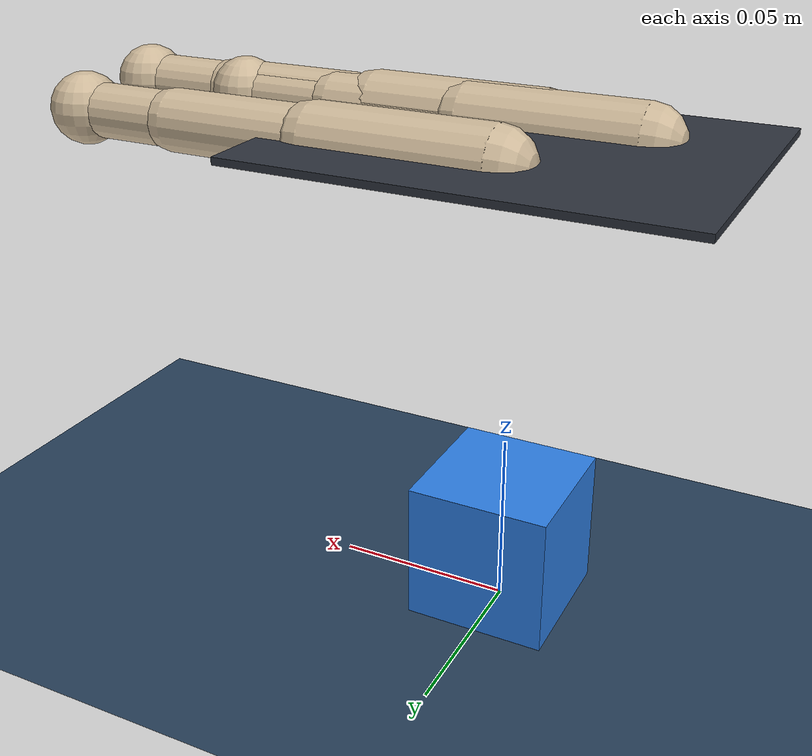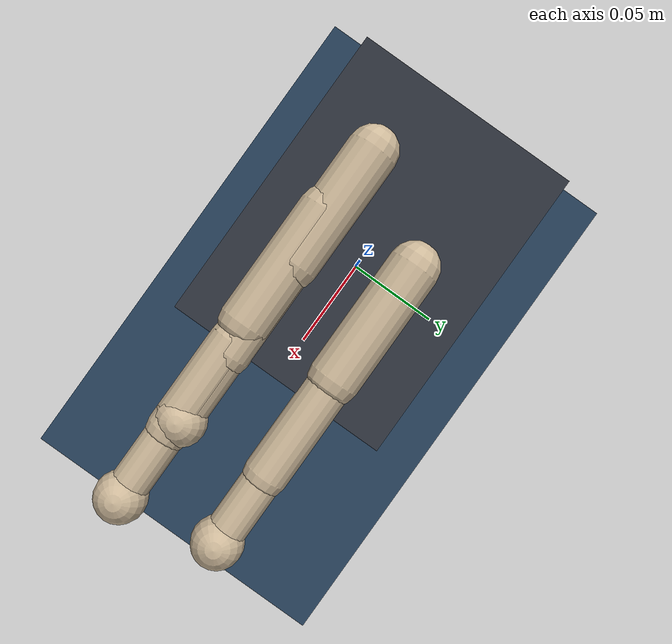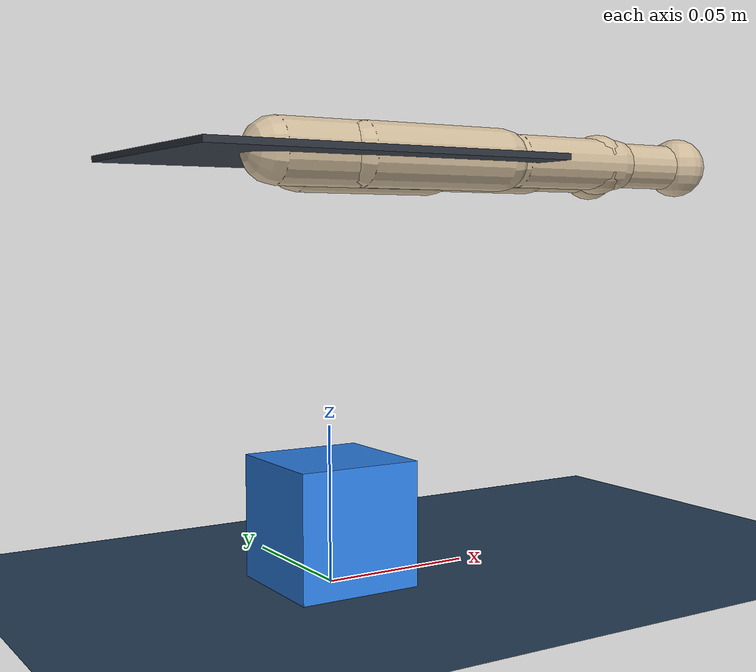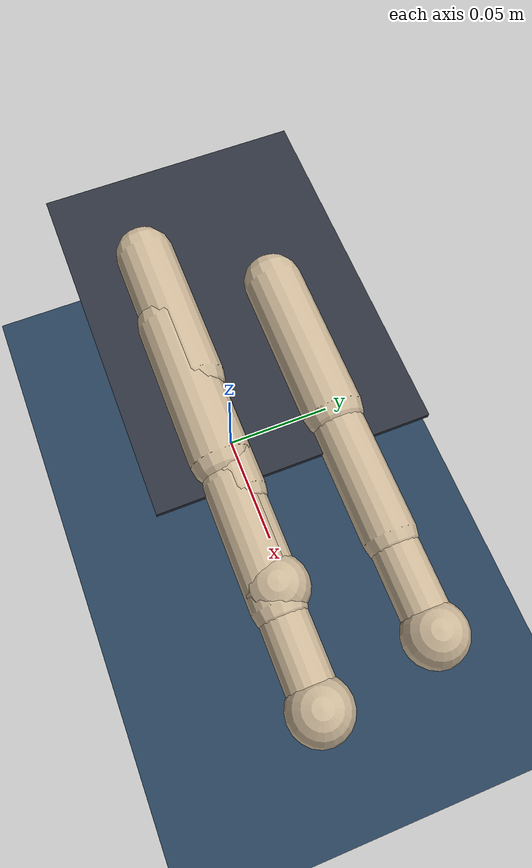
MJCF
<mujoco model="scene_cube_tp0d0024p0d0087p0d0000_in0d0020n0d0127p0d0026_mp0d0002p0d0091p0d0073">
  <compiler angle="radian" autolimits="true" />
  <option timestep="0.002" gravity="0 0 -9.81" integrator="implicitfast" />
  <visual>
    <headlight ambient=".4 .4 .4" diffuse=".8 .8 .8" specular="0.1 0.1 0.1" />
    <map znear=".01" />
    <quality shadowsize="2048" />
    <global elevation="-15" />
  </visual>
  <default>
    <geom friction="1.8 0.15 0.01" solref="0.006 1" solimp="0.97 0.995 0.0005" />
    <motor ctrlrange="-1 1" ctrllimited="true" />
    <default class="pose">
      <joint damping="2.0" armature="0.01" />
      <position kp="4000" kv="100" forcerange="-1000 1000" />
    </default>
    <default class="ctrl">
      <joint damping="0.5" armature="0.001" />
      <position kp="30" kv="0.5" gear="1" forcerange="-10 10" ctrlrange="-1 1" />
    </default>
  </default>
  <asset>
    <texture type="skybox" builtin="gradient" rgb1="0.3 0.5 0.7" rgb2="0 0 0" width="512" height="3072" />
    <texture type="2d" name="groundplane" builtin="checker" mark="edge" rgb1="0.2 0.3 0.4" rgb2="0.1 0.2 0.3" markrgb="0.8 0.8 0.8" width="300" height="300" />
    <material name="groundplane" texture="groundplane" texuniform="true" texrepeat="5 5" reflectance="0.2" />
    <texture name="grid" type="2d" builtin="checker" rgb1="0.15 0.15 0.15" rgb2="0.25 0.25 0.25" width="256" height="256" />
    <material name="table_mat" texture="grid" texrepeat="3 3" reflectance="0.2" />
    <material name="palm_mat" rgba="0.18 0.2 0.24 1" />
    <material name="finger_mat" rgba="0.8 0.72 0.6 1" />
    <material name="object_mat" rgba="0.18 0.5 0.9 1" />
  </asset>
  <worldbody>
    <light pos="0 0 1.5" dir="0 0 -1" directional="true" diffuse=".6 .6 .6" specular=".2 .2 .2" />
    <light pos="0.5 0.5 1.0" dir="-1 -1 -1" directional="true" diffuse=".4 .4 .4" specular=".1 .1 .1" />
    <geom name="floor" type="plane" size="1.5 1.5 0.1" material="groundplane" />
    <body name="cube" pos="0.000000 0.000000 0.020000">
      <freejoint />
      <geom type="box" size="0.020000 0.020000 0.020000" density="500" material="object_mat" friction="2.4 0.2 0.02" />
    </body>
    <body gravcomp="1" name="palm_pose" pos="0 0 0.134">
      <joint class="pose" name="palm_px" type="slide" axis="1 0 0" range="-0.20 0.20" />
      <joint class="pose" name="palm_py" type="slide" axis="0 1 0" range="-0.20 0.20" />
      <joint class="pose" name="palm_pz" type="slide" axis="0 0 1" range="-0.15 0.35" />
      <joint class="pose" name="palm_rx" type="hinge" axis="1 0 0" range="-1.57 1.57" />
      <joint class="pose" name="palm_ry" type="hinge" axis="0 1 0" range="-1.57 1.57" />
      <joint class="pose" name="palm_rz" type="hinge" axis="0 0 1" range="-3.14 3.14" />
      <geom type="box" size="0.06 0.045 0.001" material="palm_mat" />
      <body name="thumb_mount" pos="-0.027617 -0.019321 0">
        <inertial pos="0 0 0" mass="0.001" diaginertia="1e-6 1e-6 1e-6" />
        <body name="thumb_yaw_frame">
          <inertial pos="0 0 0" mass="0.001" diaginertia="1e-6 1e-6 1e-6" />
          <joint class="ctrl" name="thumb_yaw" type="hinge" axis="1 0 0" range="-1.1 1.1" />
          <body name="thumb_mcp_frame">
            <joint class="ctrl" name="thumb_mcp" type="hinge" axis="0 1 0" range="0 3.14" />
            <geom type="capsule" fromto="0 0 0 0.05 0 0" size="0.010" material="finger_mat" />
            <body name="thumb_len_frame" pos="0.05 0 0">
              <geom type="capsule" fromto="0 0 0 0.04 0 0" size="0.0085" material="finger_mat" />
              <body name="thumb_pip_frame" pos="0.04 0 0">
                <joint class="ctrl" name="thumb_pip" type="hinge" axis="0 1 0" range="-1.2 0.5" />
                <geom type="capsule" fromto="0 0 0 0.03 0 0" size="0.0075" material="finger_mat" />
                <body name="thumb_tip" pos="0.03 0 0">
                  <geom type="sphere" size="0.010" material="finger_mat" friction="2.4 0.2 0.02" />
                  <geom type="sphere" pos="0 0.004 0" size="0.005" material="finger_mat" friction="2.4 0.2 0.02" />
                  <geom type="sphere" pos="0 -0.004 0" size="0.005" material="finger_mat" friction="2.4 0.2 0.02" />
                </body>
              </body>
            </body>
          </body>
        </body>
      </body>
      <body name="index_mount" pos="-0.001995 0.017281 0">
        <inertial pos="0 0 0" mass="0.001" diaginertia="1e-6 1e-6 1e-6" />
        <body name="index_yaw_frame">
          <inertial pos="0 0 0" mass="0.001" diaginertia="1e-6 1e-6 1e-6" />
          <joint class="ctrl" name="index_yaw" type="hinge" axis="1 0 0" range="-1.1 1.1" />
          <body name="index_mcp_frame">
            <joint class="ctrl" name="index_mcp" type="hinge" axis="0 1 0" range="0 2.5" />
            <geom type="capsule" fromto="0 0 0 0.05 0 0" size="0.010" material="finger_mat" />
            <body name="index_len_frame" pos="0.052592 0 0">
              <geom type="capsule" fromto="0 0 0 0.04 0 0" size="0.0085" material="finger_mat" />
              <body name="index_pip_frame" pos="0.04 0 0">
                <joint class="ctrl" name="index_pip" type="hinge" axis="0 1 0" range="-1.2 1.57" />
                <geom type="capsule" fromto="0 0 0 0.03 0 0" size="0.0075" material="finger_mat" />
                <body name="index_tip" pos="0.03 0 0">
                  <geom type="sphere" size="0.010" material="finger_mat" friction="2.4 0.2 0.02" />
                  <geom type="sphere" pos="0 0.004 0" size="0.005" material="finger_mat" friction="2.4 0.2 0.02" />
                  <geom type="sphere" pos="0 -0.004 0" size="0.005" material="finger_mat" friction="2.4 0.2 0.02" />
                </body>
              </body>
            </body>
          </body>
        </body>
      </body>
      <body name="middle_mount" pos="0.000232 -0.02089 0">
        <inertial pos="0 0 0" mass="0.001" diaginertia="1e-6 1e-6 1e-6" />
        <body name="middle_yaw_frame">
          <inertial pos="0 0 0" mass="0.001" diaginertia="1e-6 1e-6 1e-6" />
          <joint class="ctrl" name="middle_yaw" type="hinge" axis="1 0 0" range="-1.1 1.1" />
          <body name="middle_mcp_frame">
            <joint class="ctrl" name="middle_mcp" type="hinge" axis="0 1 0" range="0 2.5" />
            <geom type="capsule" fromto="0 0 0 0.05 0 0" size="0.010" material="finger_mat" />
            <body name="middle_len_frame" pos="0.057296 0 0">
              <geom type="capsule" fromto="0 0 0 0.04 0 0" size="0.0085" material="finger_mat" />
              <body name="middle_pip_frame" pos="0.04 0 0">
                <joint class="ctrl" name="middle_pip" type="hinge" axis="0 1 0" range="-1.2 1.57" />
                <geom type="capsule" fromto="0 0 0 0.03 0 0" size="0.0075" material="finger_mat" />
                <body name="middle_tip" pos="0.03 0 0">
                  <geom type="sphere" size="0.010" material="finger_mat" friction="2.4 0.2 0.02" />
                  <geom type="sphere" pos="0 0.004 0" size="0.005" material="finger_mat" friction="2.4 0.2 0.02" />
                  <geom type="sphere" pos="0 -0.004 0" size="0.005" material="finger_mat" friction="2.4 0.2 0.02" />
                </body>
              </body>
            </body>
          </body>
        </body>
      </body>
    </body>
  </worldbody>
  <actuator>
    <position class="pose" name="a_palm_px" joint="palm_px" ctrlrange="-0.20 0.20" />
    <position class="pose" name="a_palm_py" joint="palm_py" ctrlrange="-0.20 0.20" />
    <position class="pose" name="a_palm_pz" joint="palm_pz" ctrlrange="-0.15 0.35" />
    <position class="pose" name="a_palm_rx" joint="palm_rx" ctrlrange="-1.57 1.57" />
    <position class="pose" name="a_palm_ry" joint="palm_ry" ctrlrange="-1.57 1.57" />
    <position class="pose" name="a_palm_rz" joint="palm_rz" ctrlrange="-3.14 3.14" />
    <position class="ctrl" name="a_thumb_yaw" joint="thumb_yaw" ctrlrange="-1.1 1.1" />
    <position class="ctrl" name="a_thumb_mcp" joint="thumb_mcp" ctrlrange="0 3.14" />
    <position class="ctrl" name="a_thumb_pip" joint="thumb_pip" ctrlrange="-1.2 0.5" />
    <position class="ctrl" name="a_index_yaw" joint="index_yaw" ctrlrange="-1.1 1.1" />
    <position class="ctrl" name="a_index_mcp" joint="index_mcp" ctrlrange="0 2.5" />
    <position class="ctrl" name="a_index_pip" joint="index_pip" ctrlrange="-1.2 1.57" />
    <position class="ctrl" name="a_middle_yaw" joint="middle_yaw" ctrlrange="-1.1 1.1" />
    <position class="ctrl" name="a_middle_mcp" joint="middle_mcp" ctrlrange="0 2.5" />
    <position class="ctrl" name="a_middle_pip" joint="middle_pip" ctrlrange="-1.2 1.57" />
  </actuator>
  <keyframe>
    <key name="open" qpos="&#10;        0 0 0.02 1 0 0 0 0.02 0 0 0 0 0 0 2 -0.707 0 1.25 1 0 1.25 1&#10;      " ctrl="&#10;        0.02 0 0 0 0 0 0 2 -0.707 0 1.25 1 0 1.25 1&#10;      " />
    <key name="foundational" qpos="&#10;        0.001279757323 -0.01098215094 0.02983123762 0.6627282385 0.006513982343 0.2338735171 0.7113733393 0.02231518439 0.0002288047098 0.001498369274 3.771574636e-05 -0.0002977994666 -6.004268556e-06 -0.1512897048 1.49180055 -1.195090498 0.005722690693 1.518104294 1.112126189 0.1179450268 1.309224393 1.086319137&#10;      " ctrl="&#10;        0.02 0 0 0 0 0 0.01670650338 1.41369204 -1.198818347 -0.1406929477 1.501884839 1.112227418 0.0852410028 1.463008126 1.126216331&#10;      " />
  </keyframe>
</mujoco>
